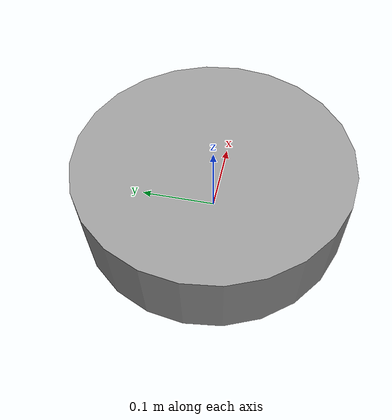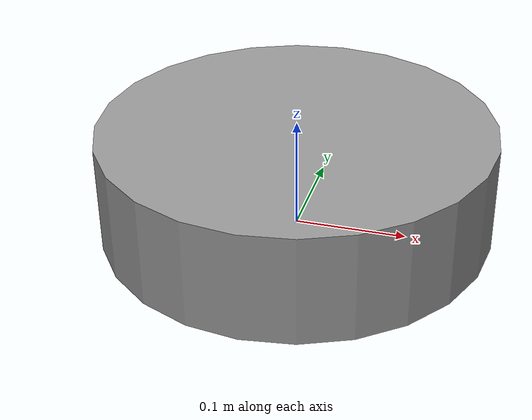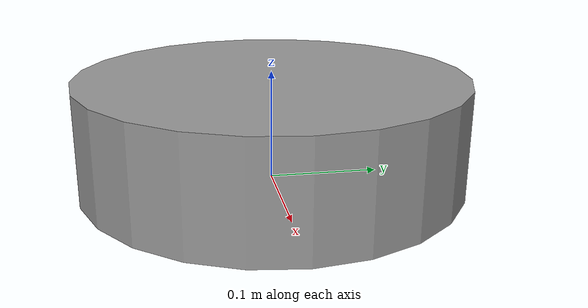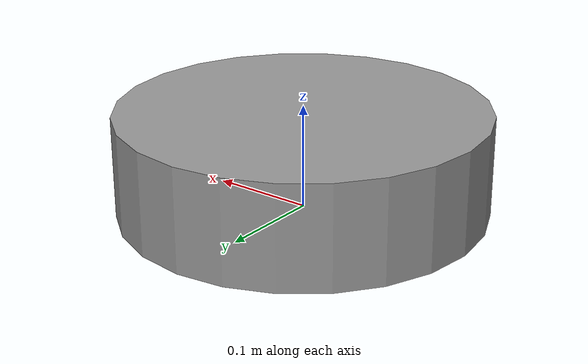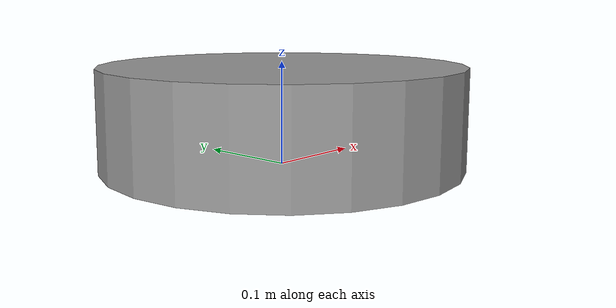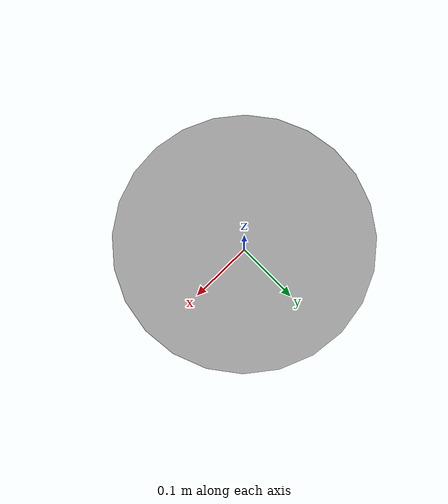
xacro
<?xml version="1.0"?>
<robot name="ippolit" xmlns:xacro="http://www.ros.org/wiki/xacro">

  <!-- ===== measured geometry (single source of truth) ===== -->
  <xacro:property name="chassis_radius" value="0.175"/>
  <xacro:property name="chassis_height" value="0.097"/>
  <xacro:property name="laser_x" value="0.0"/>
  <xacro:property name="laser_y" value="0.0"/>
  <xacro:property name="laser_z" value="0.095"/>
  <xacro:property name="camera_x" value="0.16"/>
  <xacro:property name="camera_y" value="0.0"/>
  <xacro:property name="camera_z" value="0.06"/>
  <xacro:property name="camera_yaw" value="${radians(1.8)}"/>

  <material name="chassis_grey">
    <color rgba="0.6 0.6 0.6 1.0"/>
  </material>

  <link name="base_link">
    <visual>
      <origin xyz="0 0 ${chassis_height/2}" rpy="0 0 0"/>
      <geometry>
        <cylinder radius="${chassis_radius}" length="${chassis_height}"/>
      </geometry>
      <material name="chassis_grey"/>
    </visual>
    <collision>
      <origin xyz="0 0 ${chassis_height/2}" rpy="0 0 0"/>
      <geometry>
        <cylinder radius="${chassis_radius}" length="${chassis_height}"/>
      </geometry>
    </collision>
    <inertial>
      <mass value="3.0"/>
      <origin xyz="0 0 ${chassis_height/2}"/>
      <inertia ixx="0.02" ixy="0" ixz="0" iyy="0.02" iyz="0" izz="0.03"/>
    </inertial>
  </link>

  <link name="laser"/>
  <joint name="laser_joint" type="fixed">
    <parent link="base_link"/>
    <child link="laser"/>
    <origin xyz="${laser_x} ${laser_y} ${laser_z}" rpy="0 0 0"/>
  </joint>

  <link name="camera_link"/>
  <joint name="camera_joint" type="fixed">
    <parent link="base_link"/>
    <child link="camera_link"/>
    <origin xyz="${camera_x} ${camera_y} ${camera_z}" rpy="0 0 ${camera_yaw}"/>
  </joint>

  <link name="imu_link"/>
  <joint name="imu_joint" type="fixed">
    <parent link="base_link"/>
    <child link="imu_link"/>
    <origin xyz="0 0 0" rpy="0 0 0"/>
  </joint>

</robot>
